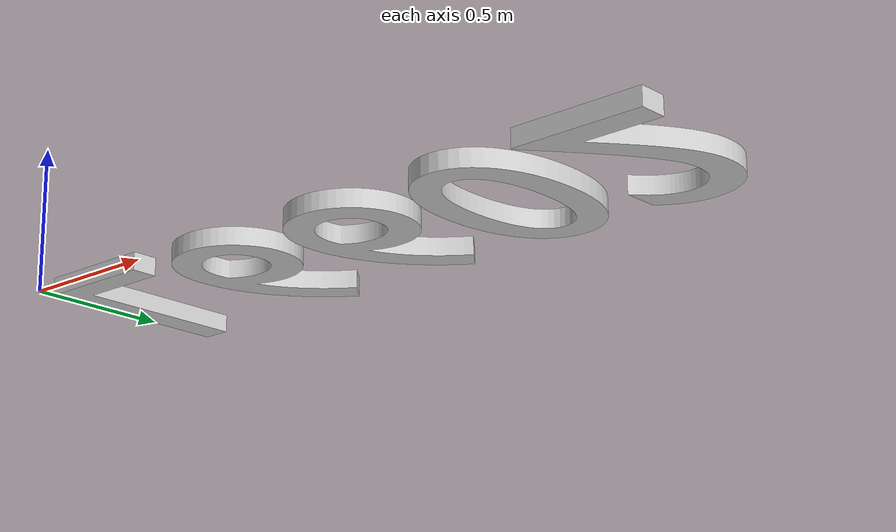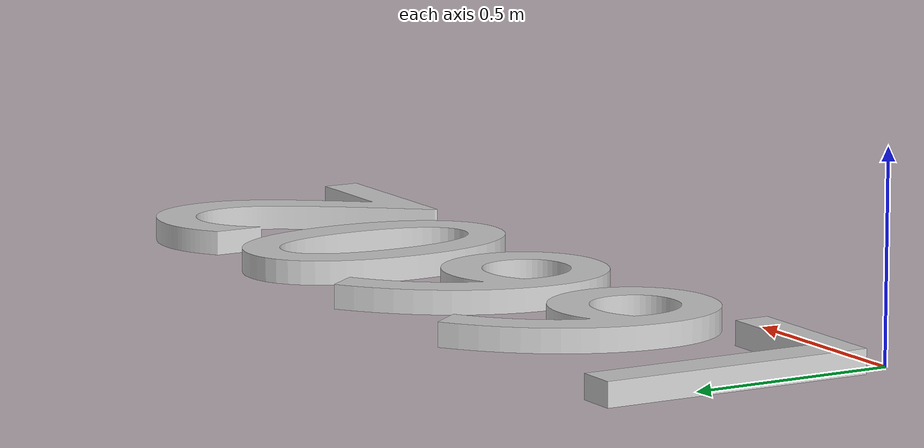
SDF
<?xml version='1.0'?>
    <sdf version='1.6'>
      <model name='L6602'>
        <link name='link'>
          <visual name='visual'>
            <geometry>
              <mesh>
                <uri>model://localros/text_3d_models/L6602/L6602.dae</uri>
              </mesh>
            </geometry>
          </visual>
        </link>
      </model>
    </sdf>
